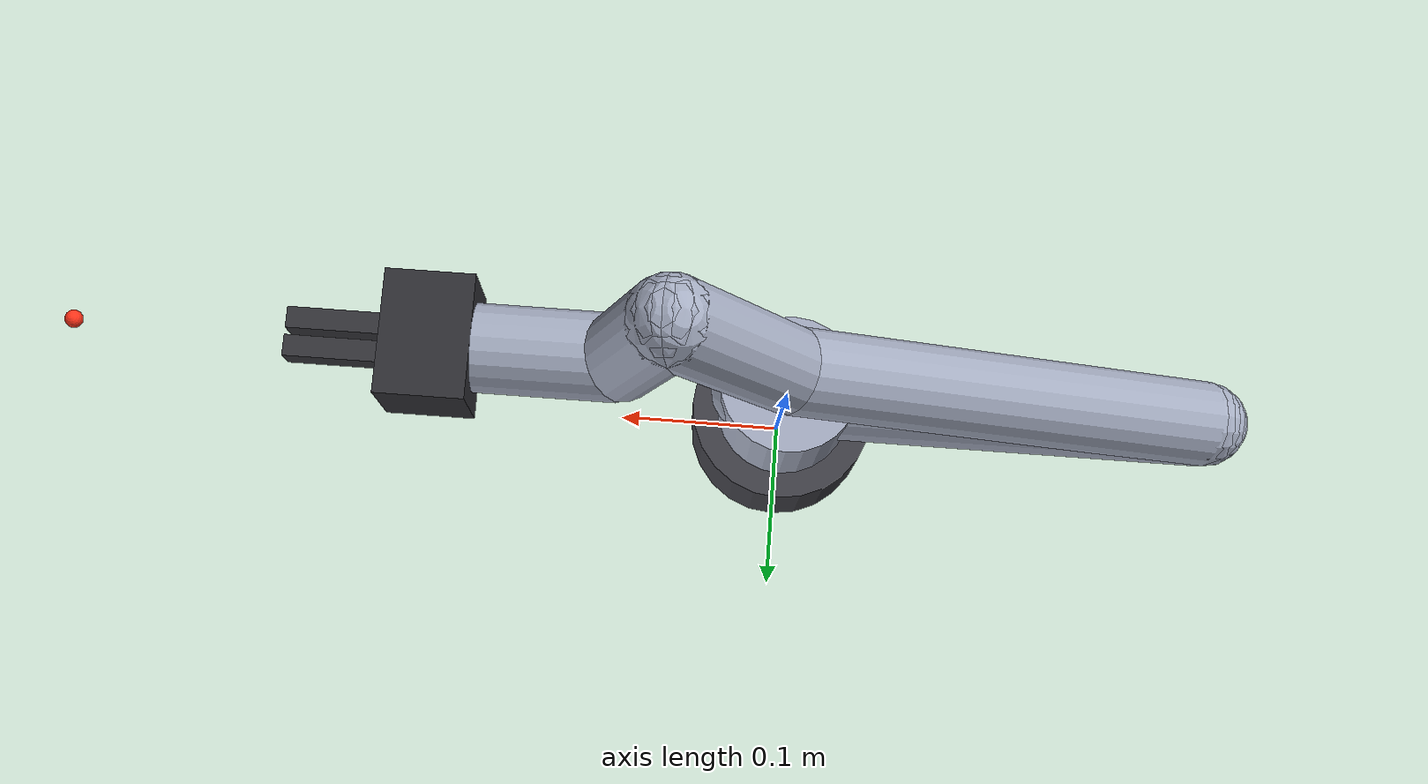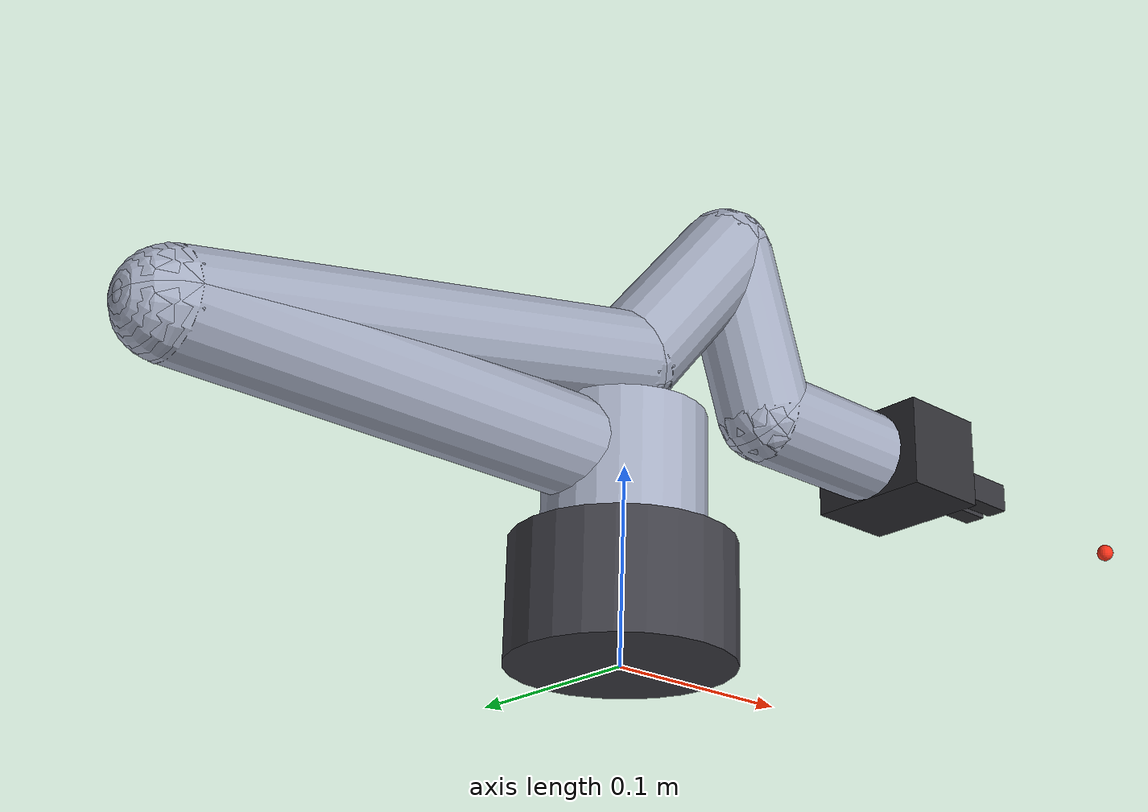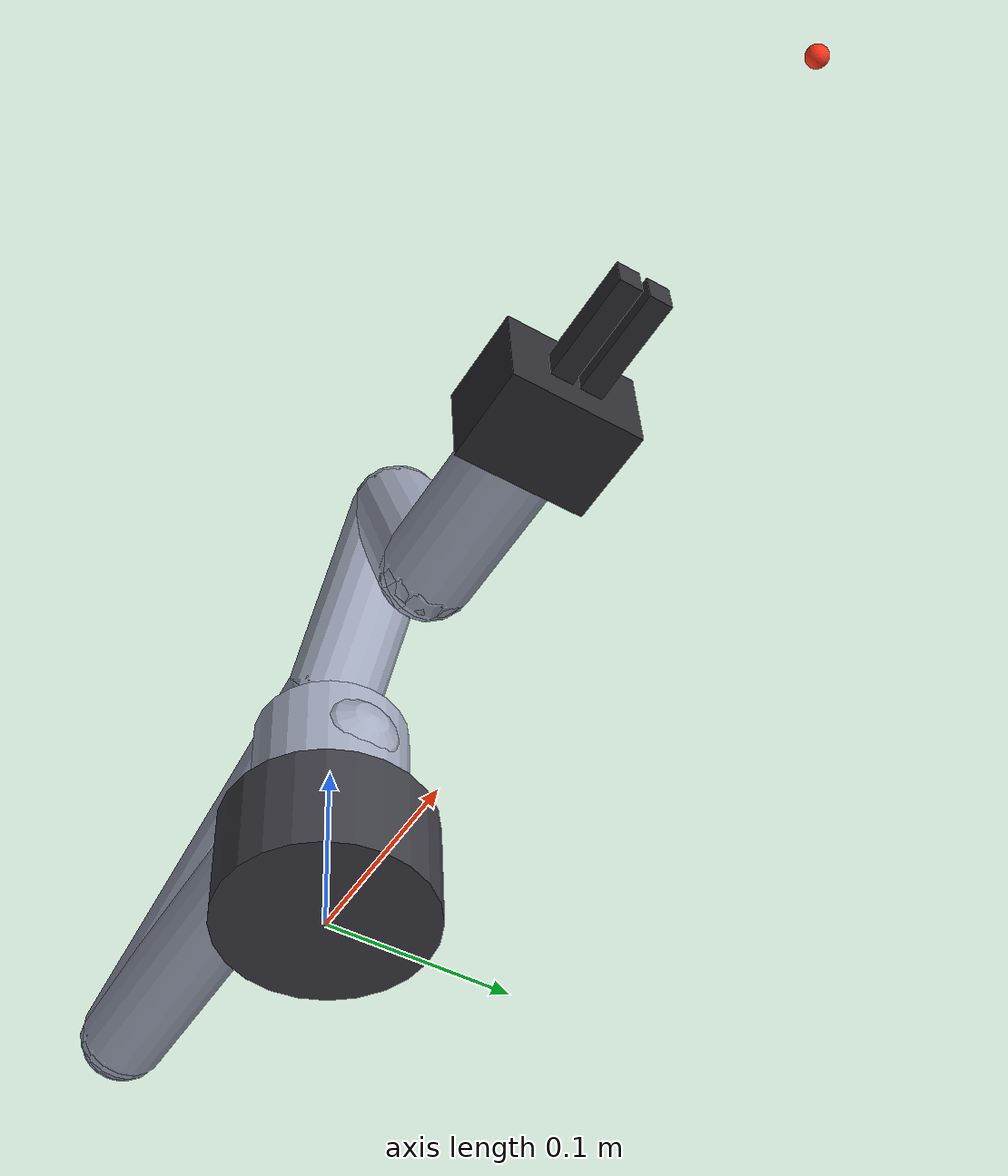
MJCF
<mujoco model="ARX X5-2023 provisional">
  <compiler angle="radian" autolimits="true"/>
  <option integrator="implicitfast" cone="elliptic" impratio="10"/>

  <default>
    <default class="x5_arm">
      <joint damping="0.2" frictionloss="0.1" armature="0.005"/>
      <position inheritrange="1" forcerange="-27 27" kp="120" kv="20"/>
      <geom type="capsule" size="0.025" rgba="0.65 0.68 0.76 1"/>
    </default>
    <default class="x5_wrist">
      <joint damping="0.1" frictionloss="0.05" armature="0.002"/>
      <position inheritrange="1" forcerange="-7 7" kp="40" kv="5"/>
    </default>
    <default class="x5_finger">
      <joint type="slide" damping="0.1" frictionloss="0.02"/>
      <position forcerange="-10 10" kp="40" kv="5"/>
      <geom type="box" size="0.035 0.006 0.008" rgba="0.2 0.2 0.22 1"/>
    </default>
  </default>

  <worldbody>
    <body name="base_link">
      <inertial pos="-0.0000277 0.000032821 0.034516" mass="0.45749"
        fullinertia="0.00019677 0.00019854 0.00019572 0.00000035 0.00000051 -0.000001"/>
      <geom type="cylinder" size="0.055 0.03" pos="0 0 0.03" rgba="0.25 0.25 0.28 1"/>
      <body name="link1" pos="0 0 0.0605">
        <inertial pos="0.00542314085 -0.00802886588 0.0170855431" mass="0.06698210196"
          fullinertia="0.00008086 0.00003211 0.00007702 0.00000207 -0.00000876 0.00000440"/>
        <joint name="joint1" axis="0 0 1" range="-2.617994 3.1416" class="x5_arm"/>
        <geom type="cylinder" size="0.04 0.045" pos="0 0 0.02" rgba="0.65 0.68 0.76 1"/>
        <body name="link2" pos="0.02 0 0.04">
          <inertial pos="-0.13233542 -0.00401655347 0.000109405013" mass="1.10681273913"
            fullinertia="0.00054299 0.01652639 0.01654931 -0.00000184 0.00003884 -0.00000035"/>
          <joint name="joint2" axis="0 1 0" range="0 3.665" class="x5_arm"/>
          <geom fromto="0 0 0 -0.264 0.00003 0" class="x5_arm"/>
          <body name="link3" pos="-0.264 0.00003 0">
            <inertial pos="0.185438849 -0.000713687802 0.0516279412" mass="0.543164013834"
              fullinertia="0.00036398 0.00422770 0.00419421 -0.00002814 -0.00039418 -0.00001179"/>
            <joint name="joint3" axis="0 -1 0" range="0 3.141593" class="x5_arm"/>
            <geom fromto="0 0 0 0.245 -0.00003 0.056" class="x5_arm"/>
            <body name="link4" pos="0.245 -0.00003 0.056">
              <inertial pos="0.0399662666 -0.00430452596 0.0350064737" mass="0.118272367739"
                fullinertia="0.00019329 0.00023401 0.00014391 -0.00001619 -0.00008654 -0.00001744"/>
              <joint name="joint4" axis="0 -1 0" range="-1.571 1.571" class="x5_wrist"/>
              <geom fromto="0 0 0 0.06775 0 0.0845" class="x5_arm"/>
              <body name="link5" pos="0.06775 0 0.0845">
                <inertial pos="0.00294914453 0.0000840861934 -0.0547949421" mass="0.67398476972"
                  fullinertia="0.00092704 0.00091568 0.00028327 0.00000049 0.00004559 0.00000053"/>
                <joint name="joint5" axis="0 0 -1" range="-1.571 1.571" class="x5_wrist"/>
                <geom fromto="0 0 0 0.02895 0 -0.0845" class="x5_arm"/>
                <body name="link6" pos="0.02895 0 -0.0845">
                  <inertial pos="0.0512788417 0.0000178798663 -0.00000784294977" mass="0.589997204781"
                    fullinertia="0.00046951 0.00055124 0.00081299 0.00000029 0.00000080 0.00000552"/>
                  <joint name="joint6" axis="1 0 0" range="-2.094395 2.094" class="x5_wrist"/>
                  <geom fromto="0 0 0 0.105 0 0" class="x5_arm"/>
                  <site name="flange_site" pos="0.105 0 0" type="sphere" size="0.004" rgba="0 0.6 1 1"/>
                  <body name="gripper_base" pos="0.105 0 0">
                    <geom type="box" size="0.025 0.035 0.025" rgba="0.18 0.18 0.2 1"/>
                    <site name="ee_site" pos="0.20 0 0" type="sphere" size="0.005" rgba="1 0.2 0.1 1"/>
                    <body name="left_finger" pos="0 0 0">
                      <joint name="left_finger_joint" axis="0 1 0" range="0 0.044" class="x5_finger"/>
                      <geom pos="0.045 0.008 0" class="x5_finger"/>
                    </body>
                    <body name="right_finger" pos="0 0 0">
                      <joint name="right_finger_joint" axis="0 1 0" range="-0.044 0" class="x5_finger"/>
                      <geom pos="0.045 -0.008 0" class="x5_finger"/>
                    </body>
                  </body>
                </body>
              </body>
            </body>
          </body>
        </body>
      </body>
    </body>
  </worldbody>

  <equality>
    <joint joint1="left_finger_joint" joint2="right_finger_joint" polycoef="0 -1 0 0 0"/>
  </equality>

  <actuator>
    <position name="joint1" joint="joint1" class="x5_arm"/>
    <position name="joint2" joint="joint2" class="x5_arm"/>
    <position name="joint3" joint="joint3" class="x5_arm"/>
    <position name="joint4" joint="joint4" class="x5_wrist"/>
    <position name="joint5" joint="joint5" class="x5_wrist"/>
    <position name="joint6" joint="joint6" class="x5_wrist"/>
    <position name="gripper" joint="left_finger_joint" class="x5_finger"/>
  </actuator>

  <keyframe>
    <key name="home" qpos="0 0.3 0.3 0 0 0 0.044 -0.044" ctrl="0 0.3 0.3 0 0 0 0.044"/>
  </keyframe>
</mujoco>
